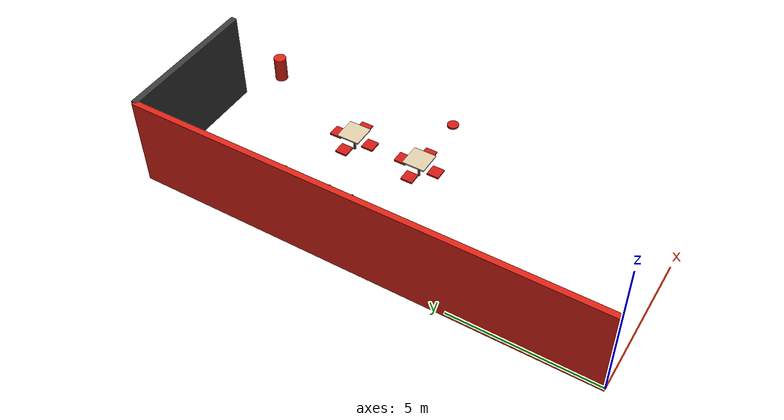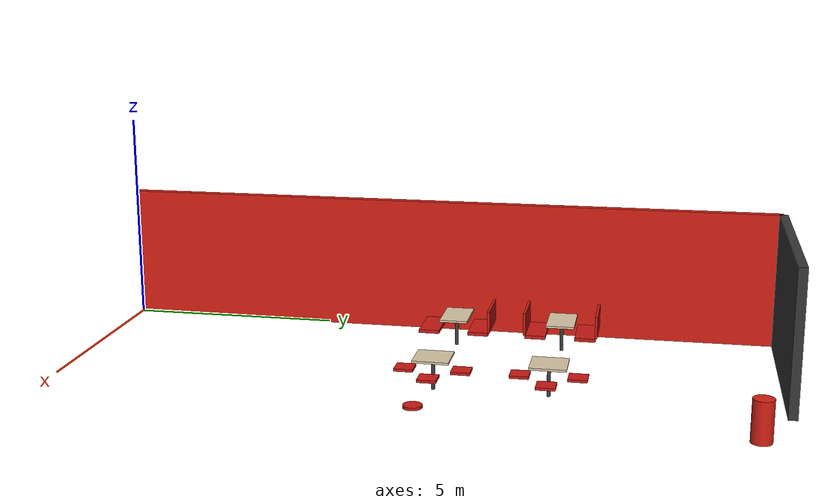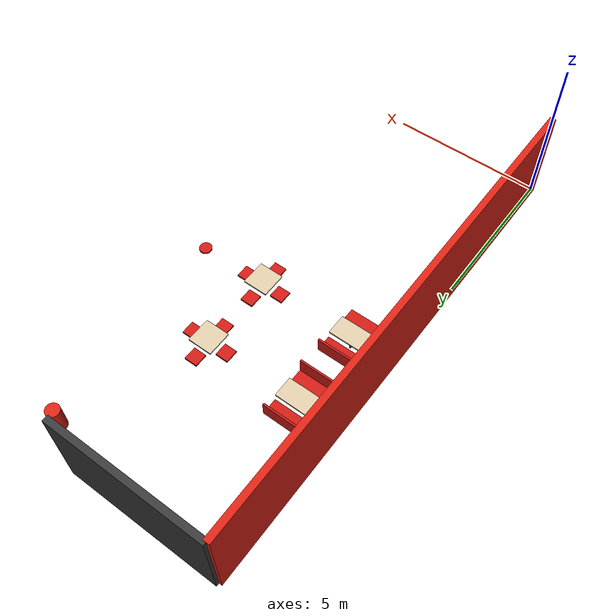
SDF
<sdf version="1.9">
 <world name="resto">
  <model name="wall_left">
   <static>true</static>
   <pose>0 8 1.6 0 0 0</pose>
   <link name="link">
    <collision name="col"><geometry><box><size>0.2 16 3.2</size></box></geometry></collision>
    <visual name="vis">
     <geometry><box><size>0.2 16 3.2</size></box></geometry>
     <material><ambient>0.85 0.13 0.08 1</ambient><diffuse>0.85 0.13 0.08 1</diffuse></material>
    </visual>
   </link>
  </model>
  <model name="wall_front_left">
   <static>true</static>
   <pose>2.5 16 1.6 0 0 0</pose>
   <link name="link">
    <collision name="col"><geometry><box><size>5 0.2 3.2</size></box></geometry></collision>
    <visual name="vis">
     <geometry><box><size>5 0.2 3.2</size></box></geometry>
     <material><ambient>0.22 0.22 0.22 1</ambient><diffuse>0.22 0.22 0.22 1</diffuse></material>
    </visual>
   </link>
  </model>
  <model name="A2_table">
   <static>true</static>
   <pose>1.3 8.5 0.72 0 0 0</pose>
   <link name="link">
    <collision name="col"><geometry><box><size>1.1 0.65 0.05</size></box></geometry></collision>
    <visual name="vis">
     <geometry><box><size>1.1 0.65 0.05</size></box></geometry>
     <material>
      <ambient>0.85 0.78 0.65 1</ambient>
      <diffuse>0.85 0.78 0.65 1</diffuse>
      <specular>0.3 0.28 0.2 1</specular>
     </material>
    </visual>
   </link>
  </model>
  <model name="A2_leg">
   <static>true</static>
   <pose>1.3 8.5 0.36 0 0 0</pose>
   <link name="link">
    <collision name="col">
     <geometry><cylinder><radius>0.04</radius><length>0.72</length></cylinder></geometry>
    </collision>
    <visual name="vis">
     <geometry><cylinder><radius>0.04</radius><length>0.72</length></cylinder></geometry>
     <material><ambient>0.25 0.25 0.25 1</ambient><diffuse>0.25 0.25 0.25 1</diffuse></material>
    </visual>
   </link>
  </model>
  <model name="A2_bench_N">
   <static>true</static>
   <pose>1.3 7.92 0.45 0 0 0</pose>
   <link name="link">
    <collision name="col"><geometry><box><size>1.1 0.48 0.08</size></box></geometry></collision>
    <visual name="vis">
     <geometry><box><size>1.1 0.48 0.08</size></box></geometry>
     <material><ambient>0.80 0.10 0.08 1</ambient><diffuse>0.80 0.10 0.08 1</diffuse></material>
    </visual>
   </link>
  </model>
  <model name="A2_bench_S">
   <static>true</static>
   <pose>1.3 9.08 0.45 0 0 0</pose>
   <link name="link">
    <collision name="col"><geometry><box><size>1.1 0.48 0.08</size></box></geometry></collision>
    <visual name="vis">
     <geometry><box><size>1.1 0.48 0.08</size></box></geometry>
     <material><ambient>0.80 0.10 0.08 1</ambient><diffuse>0.80 0.10 0.08 1</diffuse></material>
    </visual>
   </link>
  </model>
  <model name="A2_back_S">
   <static>true</static>
   <pose>1.3 9.33 0.75 0 0 0</pose>
   <link name="link">
    <collision name="col"><geometry><box><size>1.1 0.06 0.52</size></box></geometry></collision>
    <visual name="vis">
     <geometry><box><size>1.1 0.06 0.52</size></box></geometry>
     <material><ambient>0.80 0.10 0.08 1</ambient><diffuse>0.80 0.10 0.08 1</diffuse></material>
    </visual>
   </link>
  </model>
  <model name="A3_table">
   <static>true</static>
   <pose>1.3 11.0 0.72 0 0 0</pose>
   <link name="link">
    <collision name="col"><geometry><box><size>1.1 0.65 0.05</size></box></geometry></collision>
    <visual name="vis">
     <geometry><box><size>1.1 0.65 0.05</size></box></geometry>
     <material>
      <ambient>0.85 0.78 0.65 1</ambient>
      <diffuse>0.85 0.78 0.65 1</diffuse>
      <specular>0.3 0.28 0.2 1</specular>
     </material>
    </visual>
   </link>
  </model>
  <model name="A3_leg">
   <static>true</static>
   <pose>1.3 11.0 0.36 0 0 0</pose>
   <link name="link">
    <collision name="col">
     <geometry><cylinder><radius>0.04</radius><length>0.72</length></cylinder></geometry>
    </collision>
    <visual name="vis">
     <geometry><cylinder><radius>0.04</radius><length>0.72</length></cylinder></geometry>
     <material><ambient>0.25 0.25 0.25 1</ambient><diffuse>0.25 0.25 0.25 1</diffuse></material>
    </visual>
   </link>
  </model>
  <model name="A3_bench_N">
   <static>true</static>
   <pose>1.3 10.42 0.45 0 0 0</pose>
   <link name="link">
    <collision name="col"><geometry><box><size>1.1 0.48 0.08</size></box></geometry></collision>
    <visual name="vis">
     <geometry><box><size>1.1 0.48 0.08</size></box></geometry>
     <material><ambient>0.80 0.10 0.08 1</ambient><diffuse>0.80 0.10 0.08 1</diffuse></material>
    </visual>
   </link>
  </model>
  <model name="A3_back_N">
   <static>true</static>
   <pose>1.3 10.17 0.75 0 0 0</pose>
   <link name="link">
    <collision name="col"><geometry><box><size>1.1 0.06 0.52</size></box></geometry></collision>
    <visual name="vis">
     <geometry><box><size>1.1 0.06 0.52</size></box></geometry>
     <material><ambient>0.80 0.10 0.08 1</ambient><diffuse>0.80 0.10 0.08 1</diffuse></material>
    </visual>
   </link>
  </model>
  <model name="A3_bench_S">
   <static>true</static>
   <pose>1.3 11.58 0.45 0 0 0</pose>
   <link name="link">
    <collision name="col"><geometry><box><size>1.1 0.48 0.08</size></box></geometry></collision>
    <visual name="vis">
     <geometry><box><size>1.1 0.48 0.08</size></box></geometry>
     <material><ambient>0.80 0.10 0.08 1</ambient><diffuse>0.80 0.10 0.08 1</diffuse></material>
    </visual>
   </link>
  </model>
  <model name="A3_back_S">
   <static>true</static>
   <pose>1.3 11.83 0.75 0 0 0</pose>
   <link name="link">
    <collision name="col"><geometry><box><size>1.1 0.06 0.52</size></box></geometry></collision>
    <visual name="vis">
     <geometry><box><size>1.1 0.06 0.52</size></box></geometry>
     <material><ambient>0.80 0.10 0.08 1</ambient><diffuse>0.80 0.10 0.08 1</diffuse></material>
    </visual>
   </link>
  </model>
  <model name="B2_top">
   <static>true</static>
   <pose>4.5 8.5 0.72 0 0 0</pose>
   <link name="link">
    <collision name="col"><geometry><box><size>0.80 0.80 0.05</size></box></geometry></collision>
    <visual name="vis">
     <geometry><box><size>0.80 0.80 0.05</size></box></geometry>
     <material>
      <ambient>0.85 0.78 0.65 1</ambient>
      <diffuse>0.85 0.78 0.65 1</diffuse>
      <specular>0.3 0.28 0.2 1</specular>
     </material>
    </visual>
   </link>
  </model>
  <model name="B2_leg">
   <static>true</static>
   <pose>4.5 8.5 0.36 0 0 0</pose>
   <link name="link">
    <collision name="col">
     <geometry><cylinder><radius>0.04</radius><length>0.72</length></cylinder></geometry>
    </collision>
    <visual name="vis">
     <geometry><cylinder><radius>0.04</radius><length>0.72</length></cylinder></geometry>
     <material><ambient>0.25 0.25 0.25 1</ambient><diffuse>0.25 0.25 0.25 1</diffuse></material>
    </visual>
   </link>
  </model>
  <model name="B2_cN">
   <static>true</static>
   <pose>4.5 7.88 0.45 0 0 0</pose>
   <link name="link">
    <collision name="col"><geometry><box><size>0.42 0.42 0.06</size></box></geometry></collision>
    <visual name="vis">
     <geometry><box><size>0.42 0.42 0.06</size></box></geometry>
     <material><ambient>0.80 0.10 0.08 1</ambient><diffuse>0.80 0.10 0.08 1</diffuse></material>
    </visual>
   </link>
  </model>
  <model name="B2_cS">
   <static>true</static>
   <pose>4.5 9.12 0.45 0 0 0</pose>
   <link name="link">
    <collision name="col"><geometry><box><size>0.42 0.42 0.06</size></box></geometry></collision>
    <visual name="vis">
     <geometry><box><size>0.42 0.42 0.06</size></box></geometry>
     <material><ambient>0.80 0.10 0.08 1</ambient><diffuse>0.80 0.10 0.08 1</diffuse></material>
    </visual>
   </link>
  </model>
  <model name="B2_cW">
   <static>true</static>
   <pose>3.88 8.5 0.45 0 0 0</pose>
   <link name="link">
    <collision name="col"><geometry><box><size>0.42 0.42 0.06</size></box></geometry></collision>
    <visual name="vis">
     <geometry><box><size>0.42 0.42 0.06</size></box></geometry>
     <material><ambient>0.80 0.10 0.08 1</ambient><diffuse>0.80 0.10 0.08 1</diffuse></material>
    </visual>
   </link>
  </model>
  <model name="B2_cE">
   <static>true</static>
   <pose>5.12 8.5 0.45 0 0 0</pose>
   <link name="link">
    <collision name="col"><geometry><box><size>0.42 0.42 0.06</size></box></geometry></collision>
    <visual name="vis">
     <geometry><box><size>0.42 0.42 0.06</size></box></geometry>
     <material><ambient>0.80 0.10 0.08 1</ambient><diffuse>0.80 0.10 0.08 1</diffuse></material>
    </visual>
   </link>
  </model>
  <model name="B3_top">
   <static>true</static>
   <pose>4.5 11.0 0.72 0 0 0</pose>
   <link name="link">
    <collision name="col"><geometry><box><size>0.80 0.80 0.05</size></box></geometry></collision>
    <visual name="vis">
     <geometry><box><size>0.80 0.80 0.05</size></box></geometry>
     <material>
      <ambient>0.85 0.78 0.65 1</ambient>
      <diffuse>0.85 0.78 0.65 1</diffuse>
      <specular>0.3 0.28 0.2 1</specular>
     </material>
    </visual>
   </link>
  </model>
  <model name="B3_leg">
   <static>true</static>
   <pose>4.5 11.0 0.36 0 0 0</pose>
   <link name="link">
    <collision name="col">
     <geometry><cylinder><radius>0.04</radius><length>0.72</length></cylinder></geometry>
    </collision>
    <visual name="vis">
     <geometry><cylinder><radius>0.04</radius><length>0.72</length></cylinder></geometry>
     <material><ambient>0.25 0.25 0.25 1</ambient><diffuse>0.25 0.25 0.25 1</diffuse></material>
    </visual>
   </link>
  </model>
  <model name="B3_cN">
   <static>true</static>
   <pose>4.5 10.38 0.45 0 0 0</pose>
   <link name="link">
    <collision name="col"><geometry><box><size>0.42 0.42 0.06</size></box></geometry></collision>
    <visual name="vis">
     <geometry><box><size>0.42 0.42 0.06</size></box></geometry>
     <material><ambient>0.80 0.10 0.08 1</ambient><diffuse>0.80 0.10 0.08 1</diffuse></material>
    </visual>
   </link>
  </model>
  <model name="B3_cS">
   <static>true</static>
   <pose>4.5 11.62 0.45 0 0 0</pose>
   <link name="link">
    <collision name="col"><geometry><box><size>0.42 0.42 0.06</size></box></geometry></collision>
    <visual name="vis">
     <geometry><box><size>0.42 0.42 0.06</size></box></geometry>
     <material><ambient>0.80 0.10 0.08 1</ambient><diffuse>0.80 0.10 0.08 1</diffuse></material>
    </visual>
   </link>
  </model>
  <model name="B3_cW">
   <static>true</static>
   <pose>3.88 11.0 0.45 0 0 0</pose>
   <link name="link">
    <collision name="col"><geometry><box><size>0.42 0.42 0.06</size></box></geometry></collision>
    <visual name="vis">
     <geometry><box><size>0.42 0.42 0.06</size></box></geometry>
     <material><ambient>0.80 0.10 0.08 1</ambient><diffuse>0.80 0.10 0.08 1</diffuse></material>
    </visual>
   </link>
  </model>
  <model name="B3_cE">
   <static>true</static>
   <pose>5.12 11.0 0.45 0 0 0</pose>
   <link name="link">
    <collision name="col"><geometry><box><size>0.42 0.42 0.06</size></box></geometry></collision>
    <visual name="vis">
     <geometry><box><size>0.42 0.42 0.06</size></box></geometry>
     <material><ambient>0.80 0.10 0.08 1</ambient><diffuse>0.80 0.10 0.08 1</diffuse></material>
    </visual>
   </link>
  </model>
  <model name="C2_cW">
   <static>true</static>
   <pose>6.78 8.5 0.45 0 0 0</pose>
   <link name="link">
    <collision name="col">
     <geometry><cylinder><radius>0.20</radius><length>0.06</length></cylinder></geometry>
    </collision>
    <visual name="vis">
     <geometry><cylinder><radius>0.20</radius><length>0.06</length></cylinder></geometry>
     <material><ambient>0.80 0.10 0.08 1</ambient><diffuse>0.80 0.10 0.08 1</diffuse></material>
    </visual>
   </link>
  </model>
  <model name="trash_bin">
   <static>true</static>
   <pose>6.3 15.3 0.45 0 0 0</pose>
   <link name="link">
    <collision name="col">
     <geometry><cylinder><radius>0.22</radius><length>0.90</length></cylinder></geometry>
    </collision>
    <visual name="vis">
     <geometry><cylinder><radius>0.22</radius><length>0.90</length></cylinder></geometry>
     <material>
      <ambient>0.85 0.13 0.08 1</ambient>
      <diffuse>0.85 0.13 0.08 1</diffuse>
      <specular>0.3 0.3 0.3 1</specular>
     </material>
    </visual>
   </link>
  </model>
 </world>
</sdf>
